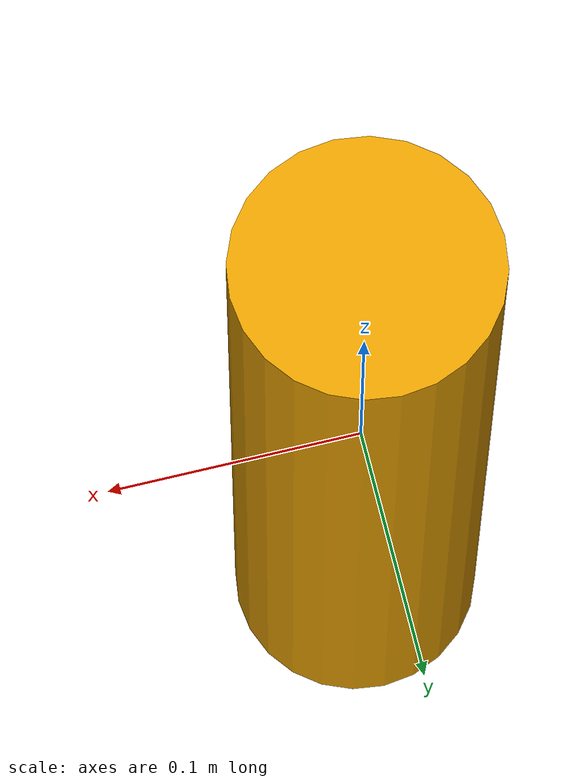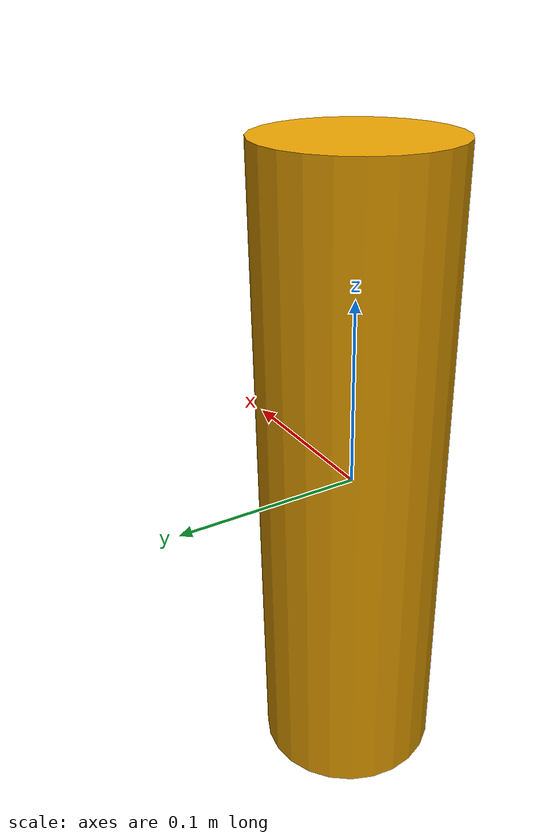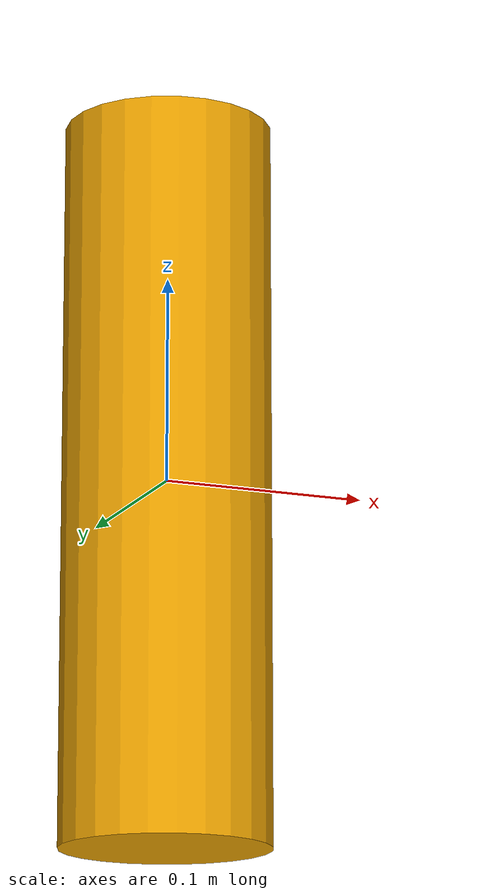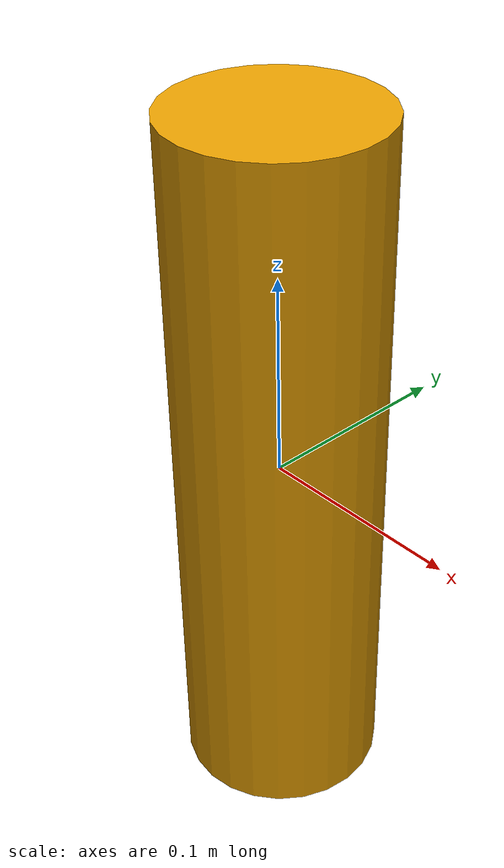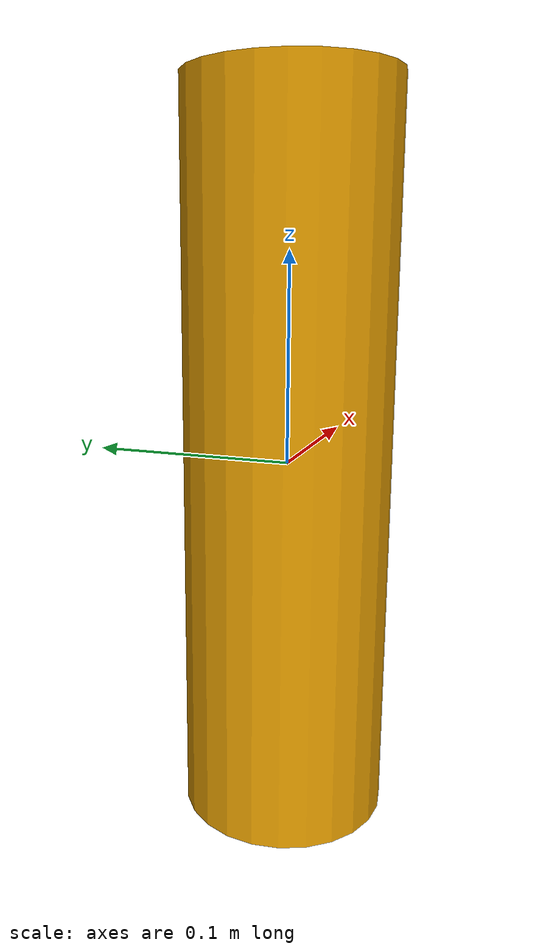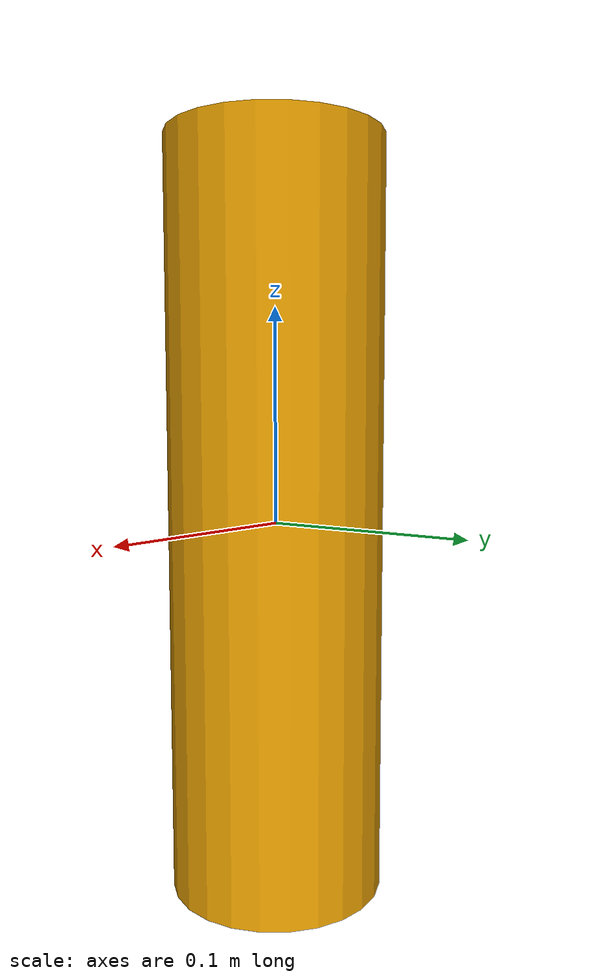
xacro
<?xml version='1.0'?>

<robot name="bat_one" xmlns:xacro="http://www.ros.org/wiki/xacro">

  <link name='chassis'>
    <pose>0 0 0 0 0 0</pose>

    <inertial>
      <mass value="2.0"/>
      <origin xyz="0.0 0 0" rpy=" 0 0 0"/>
      <inertia
          ixx="0.1" ixy="0" ixz="0"
          iyy="0.1" iyz="0"
          izz="0.1"
      />
    </inertial>

    <collision name='collision'>
      <origin xyz="0 0 0.0" rpy=" 0 0 0"/>
      <geometry>
        <cylinder length="0.35" radius="0.05"/>
      </geometry>
    </collision>

    <visual name='chassis_visual'>
      <origin xyz="0 0 0" rpy=" 0 0 0"/>
      <geometry>
       <cylinder length="0.35" radius="0.05"/>
      </geometry>
    </visual>
  </link>

</robot>
